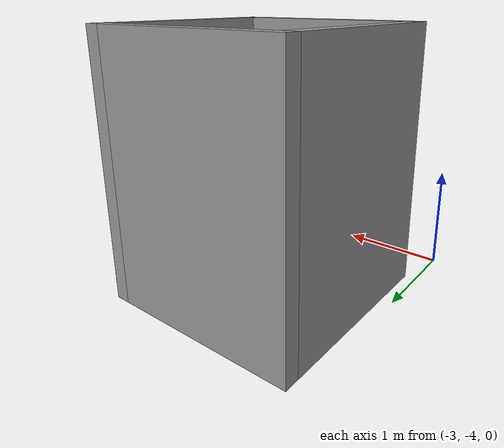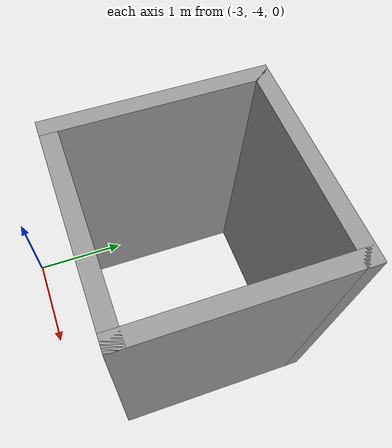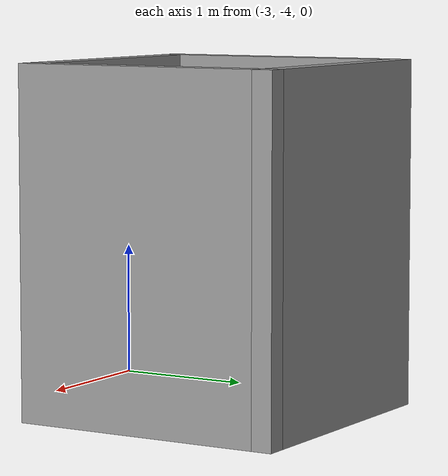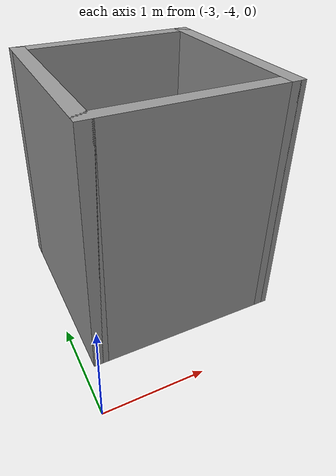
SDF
<?xml version='1.0'?>
<sdf version='1.7'>
  <model name='small_world'>
    <pose>-1.4475 -1.7575 0 0 -0 0</pose>
    <link name='Wall_24'>
      <collision name='Wall_24_Collision'>
        <geometry>
          <box>
            <size>2 0.15 2.5</size>
          </box>
        </geometry>
        <pose>0 0 1.25 0 -0 0</pose>
      </collision>
      <visual name='Wall_24_Visual'>
        <pose>0 0 1.25 0 -0 0</pose>
        <geometry>
          <box>
            <size>2 0.15 2.5</size>
          </box>
        </geometry>
        <material>
          <script>
            <uri>file://media/materials/scripts/gazebo.material</uri>
            <name>Gazebo/Grey</name>
          </script>
          <ambient>1 1 1 1</ambient>
        </material>
        <meta>
          <layer>0</layer>
        </meta>
      </visual>
      <pose>-1.3725 -0.7575 0 0 -0 -1.5708</pose>
    </link>
    <link name='Wall_25'>
      <collision name='Wall_25_Collision'>
        <geometry>
          <box>
            <size>2 0.15 2.5</size>
          </box>
        </geometry>
        <pose>0 0 1.25 0 -0 0</pose>
      </collision>
      <visual name='Wall_25_Visual'>
        <pose>0 0 1.25 0 -0 0</pose>
        <geometry>
          <box>
            <size>2 0.15 2.5</size>
          </box>
        </geometry>
        <material>
          <script>
            <uri>file://media/materials/scripts/gazebo.material</uri>
            <name>Gazebo/Grey</name>
          </script>
          <ambient>1 1 1 1</ambient>
        </material>
        <meta>
          <layer>0</layer>
        </meta>
      </visual>
      <pose>-0.4475 -1.6825 0 0 -0 0</pose>
    </link>
    <link name='Wall_26'>
      <collision name='Wall_26_Collision'>
        <geometry>
          <box>
            <size>2 0.15 2.5</size>
          </box>
        </geometry>
        <pose>0 0 1.25 0 -0 0</pose>
      </collision>
      <visual name='Wall_26_Visual'>
        <pose>0 0 1.25 0 -0 0</pose>
        <geometry>
          <box>
            <size>2 0.15 2.5</size>
          </box>
        </geometry>
        <material>
          <script>
            <uri>file://media/materials/scripts/gazebo.material</uri>
            <name>Gazebo/Grey</name>
          </script>
          <ambient>1 1 1 1</ambient>
        </material>
        <meta>
          <layer>0</layer>
        </meta>
      </visual>
      <pose>0.4775 -0.7575 0 0 -0 1.5708</pose>
    </link>
    <link name='Wall_27'>
      <collision name='Wall_27_Collision'>
        <geometry>
          <box>
            <size>2 0.15 2.5</size>
          </box>
        </geometry>
        <pose>0 0 1.25 0 -0 0</pose>
      </collision>
      <visual name='Wall_27_Visual'>
        <pose>0 0 1.25 0 -0 0</pose>
        <geometry>
          <box>
            <size>2 0.15 2.5</size>
          </box>
        </geometry>
        <material>
          <script>
            <uri>file://media/materials/scripts/gazebo.material</uri>
            <name>Gazebo/Grey</name>
          </script>
          <ambient>1 1 1 1</ambient>
        </material>
        <meta>
          <layer>0</layer>
        </meta>
      </visual>
      <pose>-0.4475 0.1675 0 0 -0 3.14159</pose>
    </link>
    <static>1</static>
  </model>
</sdf>
